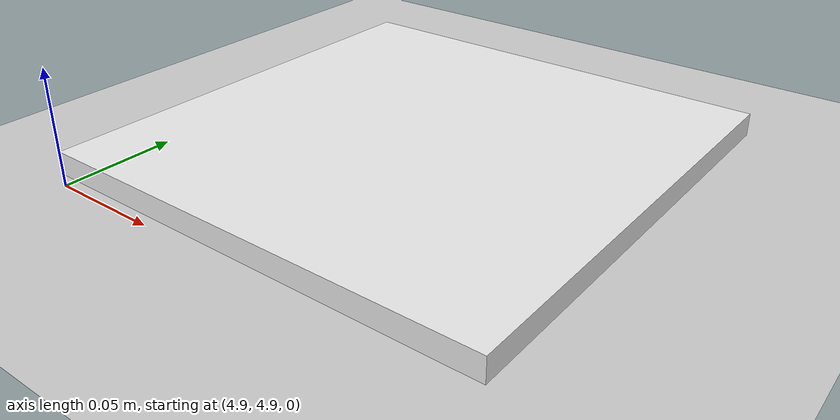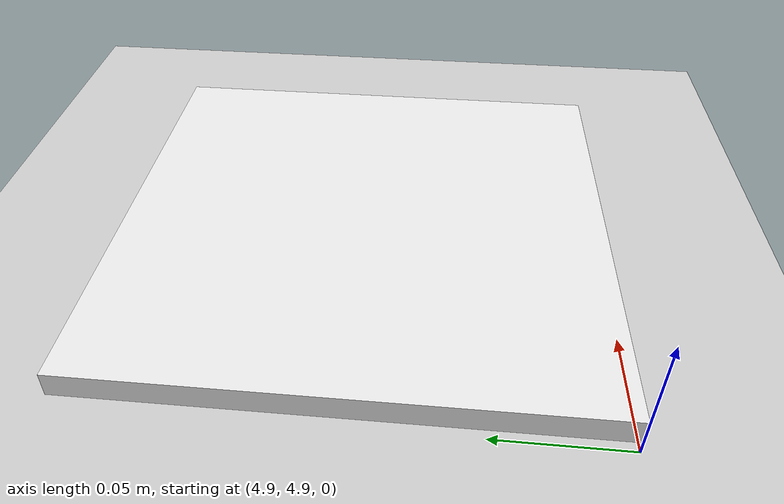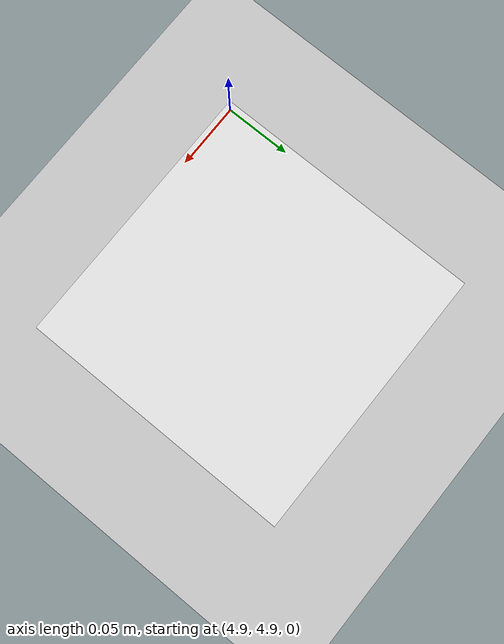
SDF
<?xml version="1.0"?>
<sdf version="1.6">
  <world name="uav_search_world">
    <include>
      <uri>model://ground_plane</uri>
    </include>

    <include>
      <uri>model://sun</uri>
    </include>

    <!-- 插入AprilTag模型 -->
    <include>
      <uri>model://apriltag_marker</uri>
      <pose>5 5 0 0 0 0</pose>
    </include>

  </world>
</sdf>

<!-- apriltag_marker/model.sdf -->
<sdf version="1.6">
  <model name="apriltag_marker">
    <static>true</static>
    <link name="link">
      <pose>0 0 0.01 0 0 0</pose>
      <collision name="collision">
        <geometry>
          <box>
            <size>0.2 0.2 0.01</size>
          </box>
        </geometry>
      </collision>
      <visual name="visual">
        <geometry>
          <box>
            <size>0.2 0.2 0.01</size>
          </box>
        </geometry>
        <material>
          <script>
            <uri>file://media/materials/scripts/gazebo.material</uri>
            <name>Gazebo/White</name>
          </script>
        </material>
      </visual>
    </link>
  </model>
</sdf>
